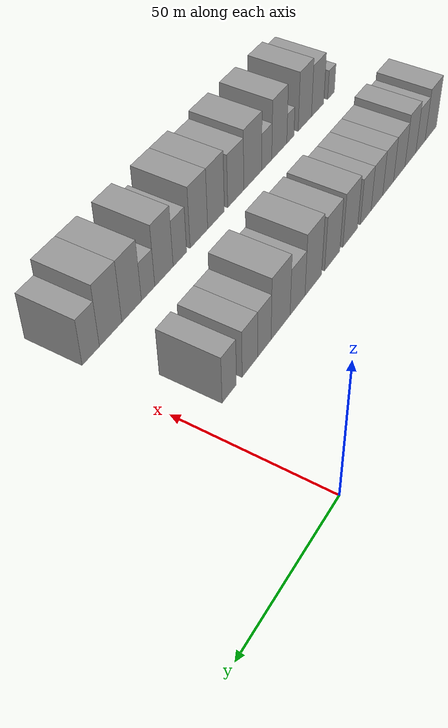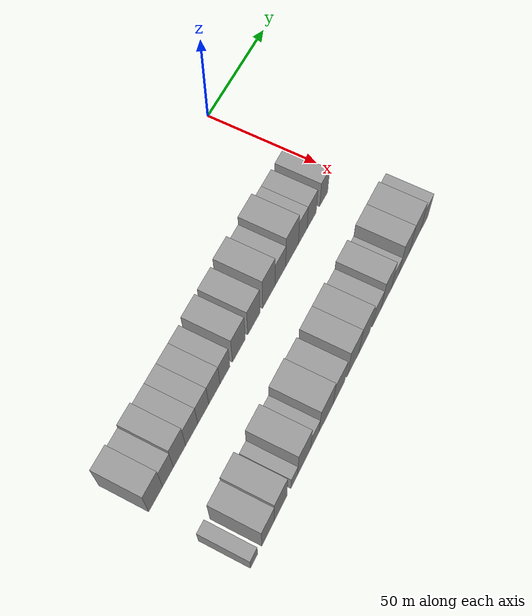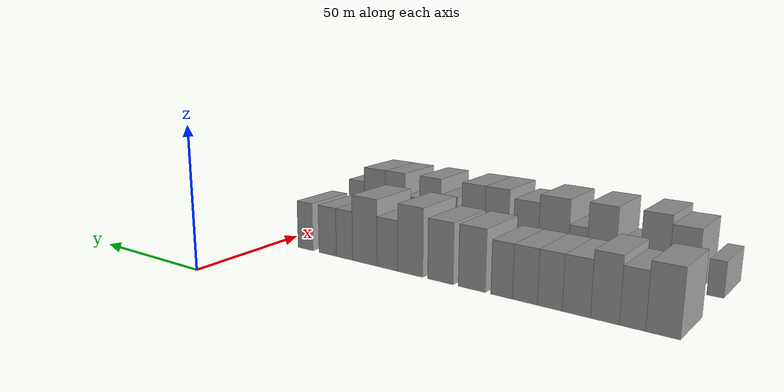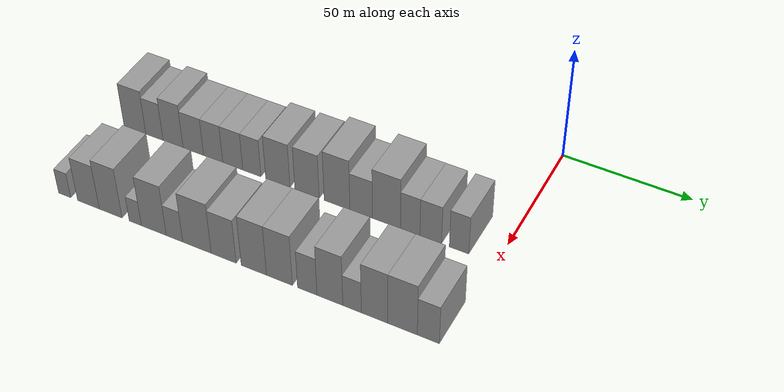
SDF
<sdf version="1.6">
 <world name="default">
  <model name="building_18">
   <static>1</static>
   <pose>50.0000 -147.5965 0 0.000000 0.000000 0.000000</pose>
   <link name="link">
    <pose>0 0 10.50 0 0 0</pose>
    <collision name="collision"><geometry><box><size>20.0000 9.7044 21.0000</size></box></geometry></collision>
    <visual name="visual">
     <cast_shadows>0</cast_shadows>
     <geometry><box><size>20.0000 9.7044 21.0000</size></box></geometry>
     <material>
      <script>
       <uri>model://grey_wall/materials/scripts</uri>
       <uri>model://grey_wall/materials/textures</uri>
       <name>vrc/grey_wall</name>
      </script>
     </material>
    </visual>
   </link>
  </model>
  <model name="building_19">
   <static>1</static>
   <pose>50.0000 -138.9264 0 0.000000 0.000000 0.000000</pose>
   <link name="link">
    <pose>0 0 9.00 0 0 0</pose>
    <collision name="collision"><geometry><box><size>20.0000 7.6358 18.0000</size></box></geometry></collision>
    <visual name="visual">
     <cast_shadows>0</cast_shadows>
     <geometry><box><size>20.0000 7.6358 18.0000</size></box></geometry>
     <material>
      <script>
       <uri>model://grey_wall/materials/scripts</uri>
       <uri>model://grey_wall/materials/textures</uri>
       <name>vrc/grey_wall</name>
      </script>
     </material>
    </visual>
   </link>
  </model>
  <model name="building_20">
   <static>1</static>
   <pose>50.0000 -130.7200 0 0.000000 0.000000 0.000000</pose>
   <link name="link">
    <pose>0 0 10.50 0 0 0</pose>
    <collision name="collision"><geometry><box><size>20.0000 8.7770 21.0000</size></box></geometry></collision>
    <visual name="visual">
     <cast_shadows>0</cast_shadows>
     <geometry><box><size>20.0000 8.7770 21.0000</size></box></geometry>
     <material>
      <script>
       <uri>model://grey_wall/materials/scripts</uri>
       <uri>model://grey_wall/materials/textures</uri>
       <name>vrc/grey_wall</name>
      </script>
     </material>
    </visual>
   </link>
  </model>
  <model name="building_21">
   <static>1</static>
   <pose>50.0000 -121.8739 0 0.000000 0.000000 0.000000</pose>
   <link name="link">
    <pose>0 0 9.00 0 0 0</pose>
    <collision name="collision"><geometry><box><size>20.0000 8.9151 18.0000</size></box></geometry></collision>
    <visual name="visual">
     <cast_shadows>0</cast_shadows>
     <geometry><box><size>20.0000 8.9151 18.0000</size></box></geometry>
     <material>
      <script>
       <uri>model://grey_wall/materials/scripts</uri>
       <uri>model://grey_wall/materials/textures</uri>
       <name>vrc/grey_wall</name>
      </script>
     </material>
    </visual>
   </link>
  </model>
  <model name="building_22">
   <static>1</static>
   <pose>50.0000 -113.3084 0 0.000000 0.000000 0.000000</pose>
   <link name="link">
    <pose>0 0 9.00 0 0 0</pose>
    <collision name="collision"><geometry><box><size>20.0000 8.2160 18.0000</size></box></geometry></collision>
    <visual name="visual">
     <cast_shadows>0</cast_shadows>
     <geometry><box><size>20.0000 8.2160 18.0000</size></box></geometry>
     <material>
      <script>
       <uri>model://grey_wall/materials/scripts</uri>
       <uri>model://grey_wall/materials/textures</uri>
       <name>vrc/grey_wall</name>
      </script>
     </material>
    </visual>
   </link>
  </model>
  <model name="building_23">
   <static>1</static>
   <pose>50.0000 -104.9316 0 0.000000 0.000000 0.000000</pose>
   <link name="link">
    <pose>0 0 9.00 0 0 0</pose>
    <collision name="collision"><geometry><box><size>20.0000 8.5375 18.0000</size></box></geometry></collision>
    <visual name="visual">
     <cast_shadows>0</cast_shadows>
     <geometry><box><size>20.0000 8.5375 18.0000</size></box></geometry>
     <material>
      <script>
       <uri>model://grey_wall/materials/scripts</uri>
       <uri>model://grey_wall/materials/textures</uri>
       <name>vrc/grey_wall</name>
      </script>
     </material>
    </visual>
   </link>
  </model>
  <model name="building_24">
   <static>1</static>
   <pose>50.0000 -96.8348 0 0.000000 0.000000 0.000000</pose>
   <link name="link">
    <pose>0 0 9.00 0 0 0</pose>
    <collision name="collision"><geometry><box><size>20.0000 7.6561 18.0000</size></box></geometry></collision>
    <visual name="visual">
     <cast_shadows>0</cast_shadows>
     <geometry><box><size>20.0000 7.6561 18.0000</size></box></geometry>
     <material>
      <script>
       <uri>model://grey_wall/materials/scripts</uri>
       <uri>model://grey_wall/materials/textures</uri>
       <name>vrc/grey_wall</name>
      </script>
     </material>
    </visual>
   </link>
  </model>
  <model name="building_25">
   <static>1</static>
   <pose>50.0000 -85.9560 0 0.000000 0.000000 0.000000</pose>
   <link name="link">
    <pose>0 0 10.50 0 0 0</pose>
    <collision name="collision"><geometry><box><size>20.0000 10.1015 21.0000</size></box></geometry></collision>
    <visual name="visual">
     <cast_shadows>0</cast_shadows>
     <geometry><box><size>20.0000 10.1015 21.0000</size></box></geometry>
     <material>
      <script>
       <uri>model://grey_wall/materials/scripts</uri>
       <uri>model://grey_wall/materials/textures</uri>
       <name>vrc/grey_wall</name>
      </script>
     </material>
    </visual>
   </link>
  </model>
  <model name="building_26">
   <static>1</static>
   <pose>50.0000 -73.9117 0 0.000000 0.000000 0.000000</pose>
   <link name="link">
    <pose>0 0 10.50 0 0 0</pose>
    <collision name="collision"><geometry><box><size>20.0000 9.9872 21.0000</size></box></geometry></collision>
    <visual name="visual">
     <cast_shadows>0</cast_shadows>
     <geometry><box><size>20.0000 9.9872 21.0000</size></box></geometry>
     <material>
      <script>
       <uri>model://grey_wall/materials/scripts</uri>
       <uri>model://grey_wall/materials/textures</uri>
       <name>vrc/grey_wall</name>
      </script>
     </material>
    </visual>
   </link>
  </model>
  <model name="building_27">
   <static>1</static>
   <pose>50.0000 -61.7205 0 0.000000 0.000000 0.000000</pose>
   <link name="link">
    <pose>0 0 12.00 0 0 0</pose>
    <collision name="collision"><geometry><box><size>20.0000 10.3952 24.0000</size></box></geometry></collision>
    <visual name="visual">
     <cast_shadows>0</cast_shadows>
     <geometry><box><size>20.0000 10.3952 24.0000</size></box></geometry>
     <material>
      <script>
       <uri>model://grey_wall/materials/scripts</uri>
       <uri>model://grey_wall/materials/textures</uri>
       <name>vrc/grey_wall</name>
      </script>
     </material>
    </visual>
   </link>
  </model>
  <model name="building_28">
   <static>1</static>
   <pose>50.0000 -52.0402 0 0.000000 0.000000 0.000000</pose>
   <link name="link">
    <pose>0 0 9.00 0 0 0</pose>
    <collision name="collision"><geometry><box><size>20.0000 8.9653 18.0000</size></box></geometry></collision>
    <visual name="visual">
     <cast_shadows>0</cast_shadows>
     <geometry><box><size>20.0000 8.9653 18.0000</size></box></geometry>
     <material>
      <script>
       <uri>model://grey_wall/materials/scripts</uri>
       <uri>model://grey_wall/materials/textures</uri>
       <name>vrc/grey_wall</name>
      </script>
     </material>
    </visual>
   </link>
  </model>
  <model name="building_29">
   <static>1</static>
   <pose>50.0000 -42.0420 0 0.000000 0.000000 0.000000</pose>
   <link name="link">
    <pose>0 0 12.00 0 0 0</pose>
    <collision name="collision"><geometry><box><size>20.0000 11.0312 24.0000</size></box></geometry></collision>
    <visual name="visual">
     <cast_shadows>0</cast_shadows>
     <geometry><box><size>20.0000 11.0312 24.0000</size></box></geometry>
     <material>
      <script>
       <uri>model://grey_wall/materials/scripts</uri>
       <uri>model://grey_wall/materials/textures</uri>
       <name>vrc/grey_wall</name>
      </script>
     </material>
    </visual>
   </link>
  </model>
  <model name="building_30">
   <static>1</static>
   <pose>50.0000 -32.7494 0 0.000000 0.000000 0.000000</pose>
   <link name="link">
    <pose>0 0 9.00 0 0 0</pose>
    <collision name="collision"><geometry><box><size>20.0000 7.5539 18.0000</size></box></geometry></collision>
    <visual name="visual">
     <cast_shadows>0</cast_shadows>
     <geometry><box><size>20.0000 7.5539 18.0000</size></box></geometry>
     <material>
      <script>
       <uri>model://grey_wall/materials/scripts</uri>
       <uri>model://grey_wall/materials/textures</uri>
       <name>vrc/grey_wall</name>
      </script>
     </material>
    </visual>
   </link>
  </model>
  <model name="building_31">
   <static>1</static>
   <pose>50.0000 -24.8039 0 0.000000 0.000000 0.000000</pose>
   <link name="link">
    <pose>0 0 9.00 0 0 0</pose>
    <collision name="collision"><geometry><box><size>20.0000 8.3371 18.0000</size></box></geometry></collision>
    <visual name="visual">
     <cast_shadows>0</cast_shadows>
     <geometry><box><size>20.0000 8.3371 18.0000</size></box></geometry>
     <material>
      <script>
       <uri>model://grey_wall/materials/scripts</uri>
       <uri>model://grey_wall/materials/textures</uri>
       <name>vrc/grey_wall</name>
      </script>
     </material>
    </visual>
   </link>
  </model>
  <model name="building_32">
   <static>1</static>
   <pose>50.0000 -13.9315 0 0.000000 0.000000 0.000000</pose>
   <link name="link">
    <pose>0 0 9.00 0 0 0</pose>
    <collision name="collision"><geometry><box><size>20.0000 7.4077 18.0000</size></box></geometry></collision>
    <visual name="visual">
     <cast_shadows>0</cast_shadows>
     <geometry><box><size>20.0000 7.4077 18.0000</size></box></geometry>
     <material>
      <script>
       <uri>model://grey_wall/materials/scripts</uri>
       <uri>model://grey_wall/materials/textures</uri>
       <name>vrc/grey_wall</name>
      </script>
     </material>
    </visual>
   </link>
  </model>
  <model name="building_80">
   <static>1</static>
   <pose>90.0000 -150.6163 0 0.000000 0.000000 0.000000</pose>
   <link name="link">
    <pose>0 0 6.00 0 0 0</pose>
    <collision name="collision"><geometry><box><size>20.0000 5.2442 12.0000</size></box></geometry></collision>
    <visual name="visual">
     <cast_shadows>0</cast_shadows>
     <geometry><box><size>20.0000 5.2442 12.0000</size></box></geometry>
     <material>
      <script>
       <uri>model://grey_wall/materials/scripts</uri>
       <uri>model://grey_wall/materials/textures</uri>
       <name>vrc/grey_wall</name>
      </script>
     </material>
    </visual>
   </link>
  </model>
  <model name="building_81">
   <static>1</static>
   <pose>90.0000 -140.3341 0 0.000000 0.000000 0.000000</pose>
   <link name="link">
    <pose>0 0 10.50 0 0 0</pose>
    <collision name="collision"><geometry><box><size>20.0000 9.3203 21.0000</size></box></geometry></collision>
    <visual name="visual">
     <cast_shadows>0</cast_shadows>
     <geometry><box><size>20.0000 9.3203 21.0000</size></box></geometry>
     <material>
      <script>
       <uri>model://grey_wall/materials/scripts</uri>
       <uri>model://grey_wall/materials/textures</uri>
       <name>vrc/grey_wall</name>
      </script>
     </material>
    </visual>
   </link>
  </model>
  <model name="building_82">
   <static>1</static>
   <pose>90.0000 -130.8270 0 0.000000 0.000000 0.000000</pose>
   <link name="link">
    <pose>0 0 12.00 0 0 0</pose>
    <collision name="collision"><geometry><box><size>20.0000 9.6938 24.0000</size></box></geometry></collision>
    <visual name="visual">
     <cast_shadows>0</cast_shadows>
     <geometry><box><size>20.0000 9.6938 24.0000</size></box></geometry>
     <material>
      <script>
       <uri>model://grey_wall/materials/scripts</uri>
       <uri>model://grey_wall/materials/textures</uri>
       <name>vrc/grey_wall</name>
      </script>
     </material>
    </visual>
   </link>
  </model>
  <model name="building_83">
   <static>1</static>
   <pose>90.0000 -120.4306 0 0.000000 0.000000 0.000000</pose>
   <link name="link">
    <pose>0 0 6.00 0 0 0</pose>
    <collision name="collision"><geometry><box><size>20.0000 5.0991 12.0000</size></box></geometry></collision>
    <visual name="visual">
     <cast_shadows>0</cast_shadows>
     <geometry><box><size>20.0000 5.0991 12.0000</size></box></geometry>
     <material>
      <script>
       <uri>model://grey_wall/materials/scripts</uri>
       <uri>model://grey_wall/materials/textures</uri>
       <name>vrc/grey_wall</name>
      </script>
     </material>
    </visual>
   </link>
  </model>
  <model name="building_84">
   <static>1</static>
   <pose>90.0000 -112.7060 0 0.000000 0.000000 0.000000</pose>
   <link name="link">
    <pose>0 0 12.00 0 0 0</pose>
    <collision name="collision"><geometry><box><size>20.0000 10.3501 24.0000</size></box></geometry></collision>
    <visual name="visual">
     <cast_shadows>0</cast_shadows>
     <geometry><box><size>20.0000 10.3501 24.0000</size></box></geometry>
     <material>
      <script>
       <uri>model://grey_wall/materials/scripts</uri>
       <uri>model://grey_wall/materials/textures</uri>
       <name>vrc/grey_wall</name>
      </script>
     </material>
    </visual>
   </link>
  </model>
  <model name="building_85">
   <static>1</static>
   <pose>90.0000 -104.1391 0 0.000000 0.000000 0.000000</pose>
   <link name="link">
    <pose>0 0 7.50 0 0 0</pose>
    <collision name="collision"><geometry><box><size>20.0000 6.7837 15.0000</size></box></geometry></collision>
    <visual name="visual">
     <cast_shadows>0</cast_shadows>
     <geometry><box><size>20.0000 6.7837 15.0000</size></box></geometry>
     <material>
      <script>
       <uri>model://grey_wall/materials/scripts</uri>
       <uri>model://grey_wall/materials/textures</uri>
       <name>vrc/grey_wall</name>
      </script>
     </material>
    </visual>
   </link>
  </model>
  <model name="building_86">
   <static>1</static>
   <pose>90.0000 -94.9474 0 0.000000 0.000000 0.000000</pose>
   <link name="link">
    <pose>0 0 12.00 0 0 0</pose>
    <collision name="collision"><geometry><box><size>20.0000 11.5998 24.0000</size></box></geometry></collision>
    <visual name="visual">
     <cast_shadows>0</cast_shadows>
     <geometry><box><size>20.0000 11.5998 24.0000</size></box></geometry>
     <material>
      <script>
       <uri>model://grey_wall/materials/scripts</uri>
       <uri>model://grey_wall/materials/textures</uri>
       <name>vrc/grey_wall</name>
      </script>
     </material>
    </visual>
   </link>
  </model>
  <model name="building_87">
   <static>1</static>
   <pose>90.0000 -84.1530 0 0.000000 0.000000 0.000000</pose>
   <link name="link">
    <pose>0 0 10.50 0 0 0</pose>
    <collision name="collision"><geometry><box><size>20.0000 9.9889 21.0000</size></box></geometry></collision>
    <visual name="visual">
     <cast_shadows>0</cast_shadows>
     <geometry><box><size>20.0000 9.9889 21.0000</size></box></geometry>
     <material>
      <script>
       <uri>model://grey_wall/materials/scripts</uri>
       <uri>model://grey_wall/materials/textures</uri>
       <name>vrc/grey_wall</name>
      </script>
     </material>
    </visual>
   </link>
  </model>
  <model name="building_88">
   <static>1</static>
   <pose>90.0000 -72.1687 0 0.000000 0.000000 0.000000</pose>
   <link name="link">
    <pose>0 0 12.00 0 0 0</pose>
    <collision name="collision"><geometry><box><size>20.0000 9.9798 24.0000</size></box></geometry></collision>
    <visual name="visual">
     <cast_shadows>0</cast_shadows>
     <geometry><box><size>20.0000 9.9798 24.0000</size></box></geometry>
     <material>
      <script>
       <uri>model://grey_wall/materials/scripts</uri>
       <uri>model://grey_wall/materials/textures</uri>
       <name>vrc/grey_wall</name>
      </script>
     </material>
    </visual>
   </link>
  </model>
  <model name="building_89">
   <static>1</static>
   <pose>90.0000 -62.1330 0 0.000000 0.000000 0.000000</pose>
   <link name="link">
    <pose>0 0 12.00 0 0 0</pose>
    <collision name="collision"><geometry><box><size>20.0000 10.0917 24.0000</size></box></geometry></collision>
    <visual name="visual">
     <cast_shadows>0</cast_shadows>
     <geometry><box><size>20.0000 10.0917 24.0000</size></box></geometry>
     <material>
      <script>
       <uri>model://grey_wall/materials/scripts</uri>
       <uri>model://grey_wall/materials/textures</uri>
       <name>vrc/grey_wall</name>
      </script>
     </material>
    </visual>
   </link>
  </model>
  <model name="building_90">
   <static>1</static>
   <pose>90.0000 -51.3672 0 0.000000 0.000000 0.000000</pose>
   <link name="link">
    <pose>0 0 9.00 0 0 0</pose>
    <collision name="collision"><geometry><box><size>20.0000 7.4399 18.0000</size></box></geometry></collision>
    <visual name="visual">
     <cast_shadows>0</cast_shadows>
     <geometry><box><size>20.0000 7.4399 18.0000</size></box></geometry>
     <material>
      <script>
       <uri>model://grey_wall/materials/scripts</uri>
       <uri>model://grey_wall/materials/textures</uri>
       <name>vrc/grey_wall</name>
      </script>
     </material>
    </visual>
   </link>
  </model>
  <model name="building_91">
   <static>1</static>
   <pose>90.0000 -42.7338 0 0.000000 0.000000 0.000000</pose>
   <link name="link">
    <pose>0 0 12.00 0 0 0</pose>
    <collision name="collision"><geometry><box><size>20.0000 9.8268 24.0000</size></box></geometry></collision>
    <visual name="visual">
     <cast_shadows>0</cast_shadows>
     <geometry><box><size>20.0000 9.8268 24.0000</size></box></geometry>
     <material>
      <script>
       <uri>model://grey_wall/materials/scripts</uri>
       <uri>model://grey_wall/materials/textures</uri>
       <name>vrc/grey_wall</name>
      </script>
     </material>
    </visual>
   </link>
  </model>
  <model name="building_92">
   <static>1</static>
   <pose>90.0000 -34.3523 0 0.000000 0.000000 0.000000</pose>
   <link name="link">
    <pose>0 0 7.50 0 0 0</pose>
    <collision name="collision"><geometry><box><size>20.0000 6.9364 15.0000</size></box></geometry></collision>
    <visual name="visual">
     <cast_shadows>0</cast_shadows>
     <geometry><box><size>20.0000 6.9364 15.0000</size></box></geometry>
     <material>
      <script>
       <uri>model://grey_wall/materials/scripts</uri>
       <uri>model://grey_wall/materials/textures</uri>
       <name>vrc/grey_wall</name>
      </script>
     </material>
    </visual>
   </link>
  </model>
  <model name="building_93">
   <static>1</static>
   <pose>90.0000 -25.9668 0 0.000000 0.000000 0.000000</pose>
   <link name="link">
    <pose>0 0 12.00 0 0 0</pose>
    <collision name="collision"><geometry><box><size>20.0000 9.8345 24.0000</size></box></geometry></collision>
    <visual name="visual">
     <cast_shadows>0</cast_shadows>
     <geometry><box><size>20.0000 9.8345 24.0000</size></box></geometry>
     <material>
      <script>
       <uri>model://grey_wall/materials/scripts</uri>
       <uri>model://grey_wall/materials/textures</uri>
       <name>vrc/grey_wall</name>
      </script>
     </material>
    </visual>
   </link>
  </model>
  <model name="building_94">
   <static>1</static>
   <pose>90.0000 -15.6514 0 0.000000 0.000000 0.000000</pose>
   <link name="link">
    <pose>0 0 12.00 0 0 0</pose>
    <collision name="collision"><geometry><box><size>20.0000 10.7964 24.0000</size></box></geometry></collision>
    <visual name="visual">
     <cast_shadows>0</cast_shadows>
     <geometry><box><size>20.0000 10.7964 24.0000</size></box></geometry>
     <material>
      <script>
       <uri>model://grey_wall/materials/scripts</uri>
       <uri>model://grey_wall/materials/textures</uri>
       <name>vrc/grey_wall</name>
      </script>
     </material>
    </visual>
   </link>
  </model>
  <model name="building_95">
   <static>1</static>
   <pose>90.0000 -6.2441 0 0.000000 0.000000 0.000000</pose>
   <link name="link">
    <pose>0 0 9.00 0 0 0</pose>
    <collision name="collision"><geometry><box><size>20.0000 8.0181 18.0000</size></box></geometry></collision>
    <visual name="visual">
     <cast_shadows>0</cast_shadows>
     <geometry><box><size>20.0000 8.0181 18.0000</size></box></geometry>
     <material>
      <script>
       <uri>model://grey_wall/materials/scripts</uri>
       <uri>model://grey_wall/materials/textures</uri>
       <name>vrc/grey_wall</name>
      </script>
     </material>
    </visual>
   </link>
  </model>
 </world>
</sdf>
